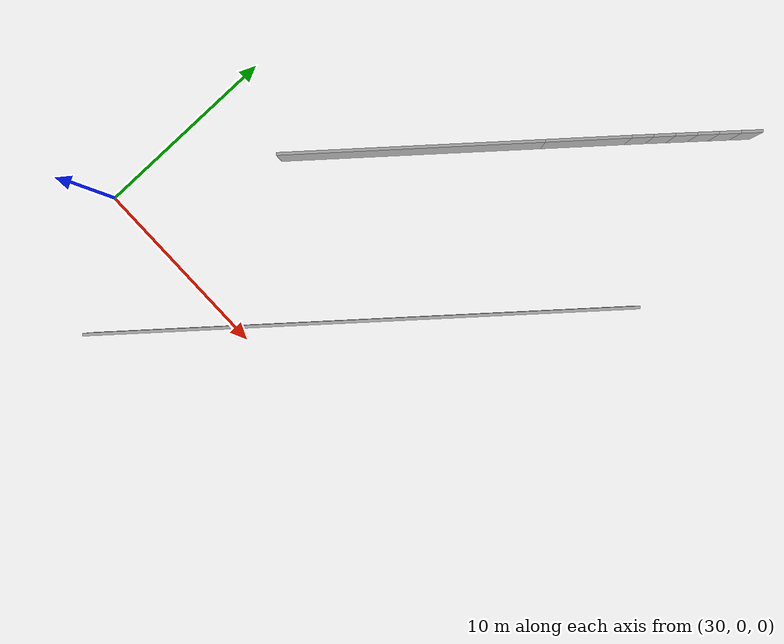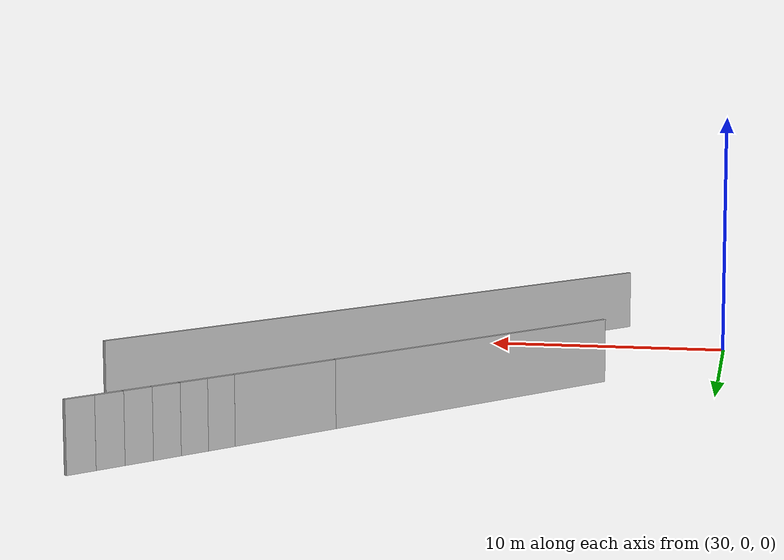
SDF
<?xml version="1.0" ?>
<sdf version="1.6">
  <model name="sps_0840">
    <pose frame="">0 0 0 0 -0 0</pose>
    <static>1</static>
    <self_collide>0</self_collide>
    <allow_auto_disable>0</allow_auto_disable>
    <link name="Wall445">
      <kinematic>0</kinematic>
      <gravity>1</gravity>
      <self_collide>0</self_collide>
      <collision name="collision">
        <geometry>
          <box>
            <size>13.3956 0.15 2.5</size>
          </box>
        </geometry>
        <pose frame="">0 0 0 0 -0 0</pose>
      </collision>
      <visual name="visual">
        <geometry>
          <box>
            <size>13.3956 0.15 2.5</size>
          </box>
        </geometry>
        <pose frame="">0 0 0 0 -0 0</pose>
        <cast_shadows>1</cast_shadows>
        <transparency>0.0</transparency>
      </visual>
      <pose frame="">38.8002 12.7838 1.25 0 -0 0.867691</pose>
    </link>
    <link name="Wall446">
      <kinematic>0</kinematic>
      <gravity>1</gravity>
      <self_collide>0</self_collide>
      <collision name="collision">
        <geometry>
          <box>
            <size>4.31681 0.15 2.5</size>
          </box>
        </geometry>
        <pose frame="">0 0 0 0 -0 0</pose>
      </collision>
      <visual name="visual">
        <geometry>
          <box>
            <size>4.31681 0.15 2.5</size>
          </box>
        </geometry>
        <pose frame="">0 0 0 0 -0 0</pose>
        <cast_shadows>1</cast_shadows>
        <transparency>0.0</transparency>
      </visual>
      <pose frame="">44.5265 19.5396 1.25 0 -0 0.867691</pose>
    </link>
    <link name="Wall620">
      <kinematic>0</kinematic>
      <gravity>1</gravity>
      <self_collide>0</self_collide>
      <collision name="collision">
        <geometry>
          <box>
            <size>27.7321 0.15 2.5</size>
          </box>
        </geometry>
        <pose frame="">0 0 0 0 -0 0</pose>
      </collision>
      <visual name="visual">
        <geometry>
          <box>
            <size>27.7321 0.15 2.5</size>
          </box>
        </geometry>
        <pose frame="">0 0 0 0 -0 0</pose>
        <cast_shadows>1</cast_shadows>
        <transparency>0.0</transparency>
      </visual>
      <pose frame="">43.4344 5.10415 1.25 0 -0 0.867753</pose>
    </link>
    <link name="Wall3573">
      <kinematic>0</kinematic>
      <gravity>1</gravity>
      <self_collide>0</self_collide>
      <collision name="collision">
        <geometry>
          <box>
            <size>1.08581 0.15 2.5</size>
          </box>
        </geometry>
        <pose frame="">0 0 0 0 -0 0</pose>
      </collision>
      <visual name="visual">
        <geometry>
          <box>
            <size>1.08581 0.15 2.5</size>
          </box>
        </geometry>
        <pose frame="">0 0 0 0 -0 0</pose>
        <cast_shadows>1</cast_shadows>
        <transparency>0.0</transparency>
      </visual>
      <pose frame="">49.8148 25.7261 1.25 0 0 -2.28279</pose>
    </link>
    <link name="Wall3574">
      <kinematic>0</kinematic>
      <gravity>1</gravity>
      <self_collide>0</self_collide>
      <collision name="collision">
        <geometry>
          <box>
            <size>1.08575 0.15 2.5</size>
          </box>
        </geometry>
        <pose frame="">0 0 0 0 -0 0</pose>
      </collision>
      <visual name="visual">
        <geometry>
          <box>
            <size>1.08575 0.15 2.5</size>
          </box>
        </geometry>
        <pose frame="">0 0 0 0 -0 0</pose>
        <cast_shadows>1</cast_shadows>
        <transparency>0.0</transparency>
      </visual>
      <pose frame="">49.1059 24.9036 1.25 0 0 -2.28136</pose>
    </link>
    <link name="Wall3575">
      <kinematic>0</kinematic>
      <gravity>1</gravity>
      <self_collide>0</self_collide>
      <collision name="collision">
        <geometry>
          <box>
            <size>1.08582 0.15 2.5</size>
          </box>
        </geometry>
        <pose frame="">0 0 0 0 -0 0</pose>
      </collision>
      <visual name="visual">
        <geometry>
          <box>
            <size>1.08582 0.15 2.5</size>
          </box>
        </geometry>
        <pose frame="">0 0 0 0 -0 0</pose>
        <cast_shadows>1</cast_shadows>
        <transparency>0.0</transparency>
      </visual>
      <pose frame="">48.3981 24.0803 1.25 0 0 -2.28056</pose>
    </link>
    <link name="Wall3576">
      <kinematic>0</kinematic>
      <gravity>1</gravity>
      <self_collide>0</self_collide>
      <collision name="collision">
        <geometry>
          <box>
            <size>1.08849 0.15 2.5</size>
          </box>
        </geometry>
        <pose frame="">0 0 0 0 -0 0</pose>
      </collision>
      <visual name="visual">
        <geometry>
          <box>
            <size>1.08849 0.15 2.5</size>
          </box>
        </geometry>
        <pose frame="">0 0 0 0 -0 0</pose>
        <cast_shadows>1</cast_shadows>
        <transparency>0.0</transparency>
      </visual>
      <pose frame="">47.6902 23.2552 1.25 0 0 -2.2792</pose>
    </link>
    <link name="Wall3577">
      <kinematic>0</kinematic>
      <gravity>1</gravity>
      <self_collide>0</self_collide>
      <collision name="collision">
        <geometry>
          <box>
            <size>1.08857 0.15 2.5</size>
          </box>
        </geometry>
        <pose frame="">0 0 0 0 -0 0</pose>
      </collision>
      <visual name="visual">
        <geometry>
          <box>
            <size>1.08857 0.15 2.5</size>
          </box>
        </geometry>
        <pose frame="">0 0 0 0 -0 0</pose>
        <cast_shadows>1</cast_shadows>
        <transparency>0.0</transparency>
      </visual>
      <pose frame="">46.9824 22.4282 1.25 0 0 -2.27817</pose>
    </link>
    <link name="Wall3578">
      <kinematic>0</kinematic>
      <gravity>1</gravity>
      <self_collide>0</self_collide>
      <collision name="collision">
        <geometry>
          <box>
            <size>1.0888 0.15 2.5</size>
          </box>
        </geometry>
        <pose frame="">0 0 0 0 -0 0</pose>
      </collision>
      <visual name="visual">
        <geometry>
          <box>
            <size>1.0888 0.15 2.5</size>
          </box>
        </geometry>
        <pose frame="">0 0 0 0 -0 0</pose>
        <cast_shadows>1</cast_shadows>
        <transparency>0.0</transparency>
      </visual>
      <pose frame="">46.2754 21.6003 1.25 0 0 -2.27703</pose>
    </link>
  </model>
</sdf>
